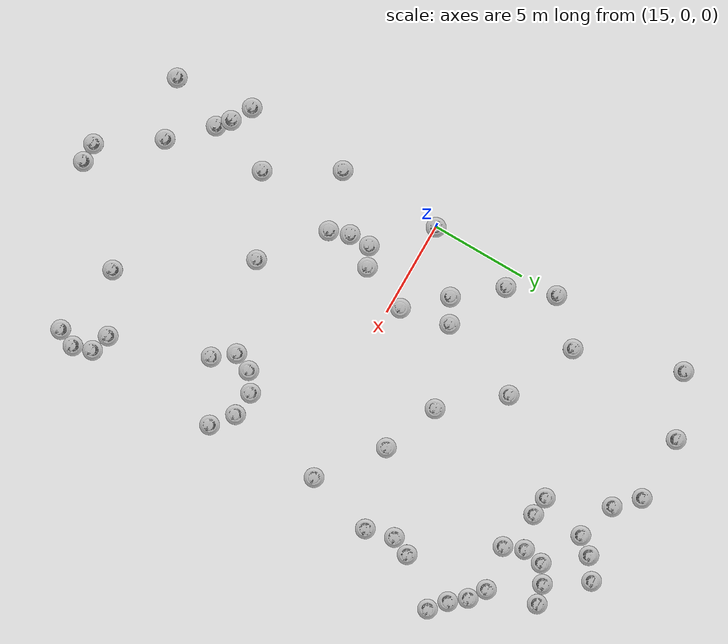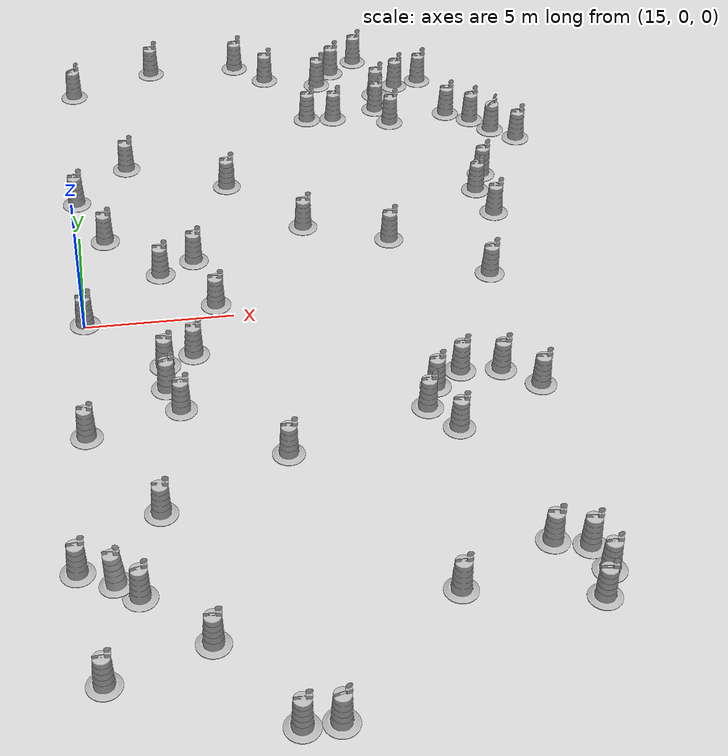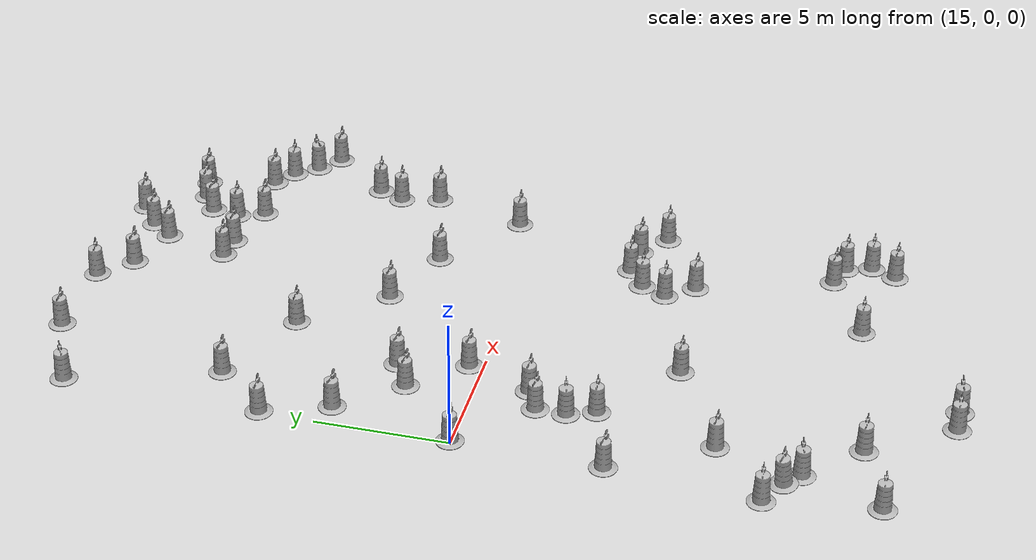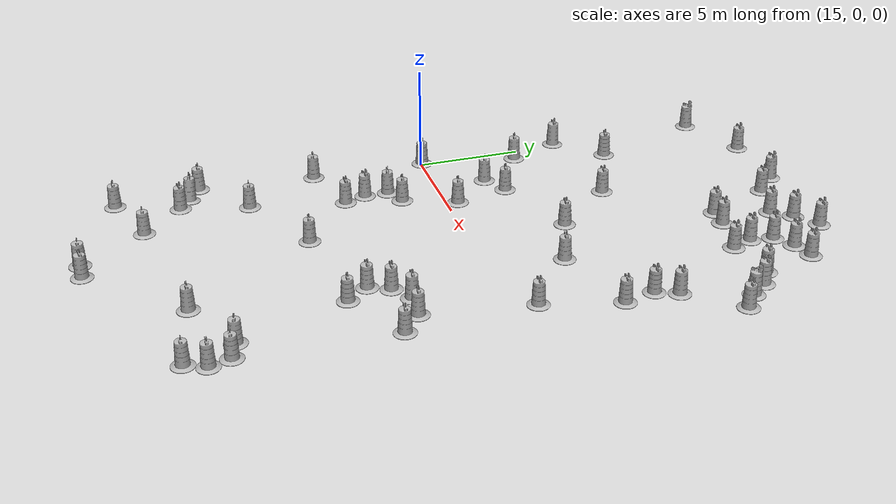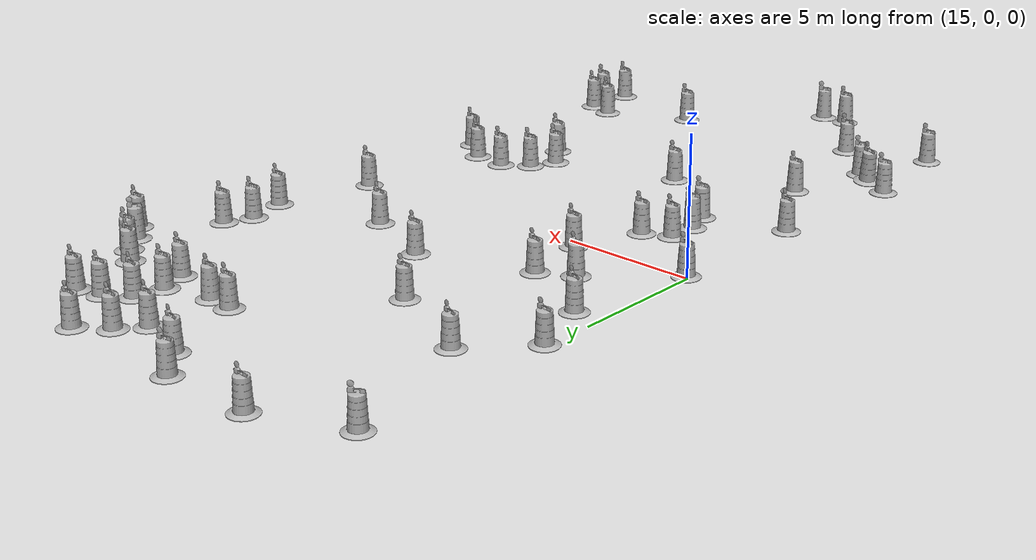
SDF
<sdf version="1.4">
 <world name="IGVC_Advanced_Course">
  <model name="Construction Barrel_9">
   <link name="link">
    <inertial>
     <pose>0 0 0.4 0 -0 0</pose>
     <mass>500</mass>
     <inertia><ixx>51.2096</ixx><iyy>51.2096</iyy><izz>25</izz><ixy>0</ixy><ixz>0</ixz><iyz>0</iyz></inertia>
    </inertial>
    <collision name="collision">
     <geometry><mesh><uri>model://construction_barrel/meshes/construction_barrel.dae</uri></mesh></geometry>
    </collision>
    <visual name="visual">
     <geometry><mesh><uri>model://construction_barrel/meshes/construction_barrel.dae</uri></mesh></geometry>
    </visual>
    <velocity_decay><linear>0</linear><angular>0</angular></velocity_decay>
   </link>
   <pose>14.444 -10.989 0.080999 -1e-06 -3e-06 0.066073</pose>
   <static>0</static>
  </model>
  <model name="Construction Barrel_10">
   <link name="link">
    <inertial>
     <pose>0 0 0.4 0 -0 0</pose>
     <mass>500</mass>
     <inertia><ixx>51.2096</ixx><iyy>51.2096</iyy><izz>25</izz><ixy>0</ixy><ixz>0</ixz><iyz>0</iyz></inertia>
    </inertial>
    <collision name="collision">
     <geometry><mesh><uri>model://construction_barrel/meshes/construction_barrel.dae</uri></mesh></geometry>
    </collision>
    <visual name="visual">
     <geometry><mesh><uri>model://construction_barrel/meshes/construction_barrel.dae</uri></mesh></geometry>
    </visual>
    <velocity_decay><linear>0</linear><angular>0</angular></velocity_decay>
   </link>
   <pose>15.5108 -11.5852 0.132666 -0.044248 -0.091691 -0.232801</pose>
   <static>0</static>
  </model>
  <model name="Construction Barrel_11">
   <link name="link">
    <inertial>
     <pose>0 0 0.4 0 -0 0</pose>
     <mass>500</mass>
     <inertia><ixx>51.2096</ixx><iyy>51.2096</iyy><izz>25</izz><ixy>0</ixy><ixz>0</ixz><iyz>0</iyz></inertia>
    </inertial>
    <collision name="collision">
     <geometry><mesh><uri>model://construction_barrel/meshes/construction_barrel.dae</uri></mesh></geometry>
    </collision>
    <visual name="visual">
     <geometry><mesh><uri>model://construction_barrel/meshes/construction_barrel.dae</uri></mesh></geometry>
    </visual>
    <velocity_decay><linear>0</linear><angular>0</angular></velocity_decay>
   </link>
   <pose>16.1396 -12.1013 0.081 0 -0 0.23185</pose>
   <static>0</static>
  </model>
  <model name="Construction Barrel_12">
   <link name="link">
    <inertial>
     <pose>0 0 0.4 0 -0 0</pose>
     <mass>500</mass>
     <inertia><ixx>51.2096</ixx><iyy>51.2096</iyy><izz>25</izz><ixy>0</ixy><ixz>0</ixz><iyz>0</iyz></inertia>
    </inertial>
    <collision name="collision">
     <geometry><mesh><uri>model://construction_barrel/meshes/construction_barrel.dae</uri></mesh></geometry>
    </collision>
    <visual name="visual">
     <geometry><mesh><uri>model://construction_barrel/meshes/construction_barrel.dae</uri></mesh></geometry>
    </visual>
    <velocity_decay><linear>0</linear><angular>0</angular></velocity_decay>
   </link>
   <pose>25.0067 -13.0004 0.080999 3e-06 -0 0.001655</pose>
   <static>0</static>
  </model>
  <model name="Construction Barrel_13">
   <link name="link">
    <inertial>
     <pose>0 0 0.4 0 -0 0</pose>
     <mass>500</mass>
     <inertia><ixx>51.2096</ixx><iyy>51.2096</iyy><izz>25</izz><ixy>0</ixy><ixz>0</ixz><iyz>0</iyz></inertia>
    </inertial>
    <collision name="collision">
     <geometry><mesh><uri>model://construction_barrel/meshes/construction_barrel.dae</uri></mesh></geometry>
    </collision>
    <visual name="visual">
     <geometry><mesh><uri>model://construction_barrel/meshes/construction_barrel.dae</uri></mesh></geometry>
    </visual>
    <velocity_decay><linear>0</linear><angular>0</angular></velocity_decay>
   </link>
   <pose>28.909 -13.7683 0.080999 -1e-06 -3e-06 -0.096455</pose>
   <static>0</static>
  </model>
  <model name="Construction Barrel_14">
   <link name="link">
    <inertial>
     <pose>0 0 0.4 0 -0 0</pose>
     <mass>500</mass>
     <inertia><ixx>51.2096</ixx><iyy>51.2096</iyy><izz>25</izz><ixy>0</ixy><ixz>0</ixz><iyz>0</iyz></inertia>
    </inertial>
    <collision name="collision">
     <geometry><mesh><uri>model://construction_barrel/meshes/construction_barrel.dae</uri></mesh></geometry>
    </collision>
    <visual name="visual">
     <geometry><mesh><uri>model://construction_barrel/meshes/construction_barrel.dae</uri></mesh></geometry>
    </visual>
    <velocity_decay><linear>0</linear><angular>0</angular></velocity_decay>
   </link>
   <pose>29.3138 -12.8312 0.080999 -1e-06 -3e-06 0.021451</pose>
   <static>0</static>
  </model>
  <model name="Construction Barrel_15">
   <link name="link">
    <inertial>
     <pose>0 0 0.4 0 -0 0</pose>
     <mass>500</mass>
     <inertia><ixx>51.2096</ixx><iyy>51.2096</iyy><izz>25</izz><ixy>0</ixy><ixz>0</ixz><iyz>0</iyz></inertia>
    </inertial>
    <collision name="collision">
     <geometry><mesh><uri>model://construction_barrel/meshes/construction_barrel.dae</uri></mesh></geometry>
    </collision>
    <visual name="visual">
     <geometry><mesh><uri>model://construction_barrel/meshes/construction_barrel.dae</uri></mesh></geometry>
    </visual>
    <velocity_decay><linear>0</linear><angular>0</angular></velocity_decay>
   </link>
   <pose>29.0176 -11.8596 0.080999 -1e-06 -2e-06 -0.086565</pose>
   <static>0</static>
  </model>
  <model name="Construction Barrel_16">
   <link name="link">
    <inertial>
     <pose>0 0 0.4 0 -0 0</pose>
     <mass>500</mass>
     <inertia><ixx>51.2096</ixx><iyy>51.2096</iyy><izz>25</izz><ixy>0</ixy><ixz>0</ixz><iyz>0</iyz></inertia>
    </inertial>
    <collision name="collision">
     <geometry><mesh><uri>model://construction_barrel/meshes/construction_barrel.dae</uri></mesh></geometry>
    </collision>
    <visual name="visual">
     <geometry><mesh><uri>model://construction_barrel/meshes/construction_barrel.dae</uri></mesh></geometry>
    </visual>
    <velocity_decay><linear>0</linear><angular>0</angular></velocity_decay>
   </link>
   <pose>28.002 -11.5393 0.080999 -1e-06 -3e-06 -0.166182</pose>
   <static>0</static>
  </model>
  <model name="Construction Barrel_17">
   <link name="link">
    <inertial>
     <pose>0 0 0.4 0 -0 0</pose>
     <mass>500</mass>
     <inertia><ixx>51.2096</ixx><iyy>51.2096</iyy><izz>25</izz><ixy>0</ixy><ixz>0</ixz><iyz>0</iyz></inertia>
    </inertial>
    <collision name="collision">
     <geometry><mesh><uri>model://construction_barrel/meshes/construction_barrel.dae</uri></mesh></geometry>
    </collision>
    <visual name="visual">
     <geometry><mesh><uri>model://construction_barrel/meshes/construction_barrel.dae</uri></mesh></geometry>
    </visual>
    <velocity_decay><linear>0</linear><angular>0</angular></velocity_decay>
   </link>
   <pose>26.3344 -6.52818 0.080999 -1e-06 -2e-06 -0.088087</pose>
   <static>0</static>
  </model>
  <model name="Construction Barrel_18">
   <link name="link">
    <inertial>
     <pose>0 0 0.4 0 -0 0</pose>
     <mass>500</mass>
     <inertia><ixx>51.2096</ixx><iyy>51.2096</iyy><izz>25</izz><ixy>0</ixy><ixz>0</ixz><iyz>0</iyz></inertia>
    </inertial>
    <collision name="collision">
     <geometry><mesh><uri>model://construction_barrel/meshes/construction_barrel.dae</uri></mesh></geometry>
    </collision>
    <visual name="visual">
     <geometry><mesh><uri>model://construction_barrel/meshes/construction_barrel.dae</uri></mesh></geometry>
    </visual>
    <velocity_decay><linear>0</linear><angular>0</angular></velocity_decay>
   </link>
   <pose>20.9537 -6.98032 0.080999 -1e-06 -3e-06 -0.078884</pose>
   <static>0</static>
  </model>
  <model name="Construction Barrel_19">
   <link name="link">
    <inertial>
     <pose>0 0 0.4 0 -0 0</pose>
     <mass>500</mass>
     <inertia><ixx>51.2096</ixx><iyy>51.2096</iyy><izz>25</izz><ixy>0</ixy><ixz>0</ixz><iyz>0</iyz></inertia>
    </inertial>
    <collision name="collision">
     <geometry><mesh><uri>model://construction_barrel/meshes/construction_barrel.dae</uri></mesh></geometry>
    </collision>
    <visual name="visual">
     <geometry><mesh><uri>model://construction_barrel/meshes/construction_barrel.dae</uri></mesh></geometry>
    </visual>
    <velocity_decay><linear>0</linear><angular>0</angular></velocity_decay>
   </link>
   <pose>16.9409 -8.96894 0.080999 -1e-06 -4e-06 -0.129432</pose>
   <static>0</static>
  </model>
  <model name="Construction Barrel_20">
   <link name="link">
    <inertial>
     <pose>0 0 0.4 0 -0 0</pose>
     <mass>500</mass>
     <inertia><ixx>51.2096</ixx><iyy>51.2096</iyy><izz>25</izz><ixy>0</ixy><ixz>0</ixz><iyz>0</iyz></inertia>
    </inertial>
    <collision name="collision">
     <geometry><mesh><uri>model://construction_barrel/meshes/construction_barrel.dae</uri></mesh></geometry>
    </collision>
    <visual name="visual">
     <geometry><mesh><uri>model://construction_barrel/meshes/construction_barrel.dae</uri></mesh></geometry>
    </visual>
    <velocity_decay><linear>0</linear><angular>0</angular></velocity_decay>
   </link>
   <pose>14.8941 -5.45377 0.080999 -1e-06 -2e-06 -0.261305</pose>
   <static>0</static>
  </model>
  <model name="Construction Barrel_21">
   <link name="link">
    <inertial>
     <pose>0 0 0.4 0 -0 0</pose>
     <mass>500</mass>
     <inertia><ixx>51.2096</ixx><iyy>51.2096</iyy><izz>25</izz><ixy>0</ixy><ixz>0</ixz><iyz>0</iyz></inertia>
    </inertial>
    <collision name="collision">
     <geometry><mesh><uri>model://construction_barrel/meshes/construction_barrel.dae</uri></mesh></geometry>
    </collision>
    <visual name="visual">
     <geometry><mesh><uri>model://construction_barrel/meshes/construction_barrel.dae</uri></mesh></geometry>
    </visual>
    <velocity_decay><linear>0</linear><angular>0</angular></velocity_decay>
   </link>
   <pose>17.5037 -3.53423 0.080999 -2e-06 -3e-06 0.256139</pose>
   <static>0</static>
  </model>
  <model name="Construction Barrel_22">
   <link name="link">
    <inertial>
     <pose>0 0 0.4 0 -0 0</pose>
     <mass>500</mass>
     <inertia><ixx>51.2096</ixx><iyy>51.2096</iyy><izz>25</izz><ixy>0</ixy><ixz>0</ixz><iyz>0</iyz></inertia>
    </inertial>
    <collision name="collision">
     <geometry><mesh><uri>model://construction_barrel/meshes/construction_barrel.dae</uri></mesh></geometry>
    </collision>
    <visual name="visual">
     <geometry><mesh><uri>model://construction_barrel/meshes/construction_barrel.dae</uri></mesh></geometry>
    </visual>
    <velocity_decay><linear>0</linear><angular>0</angular></velocity_decay>
   </link>
   <pose>25.9833 -4.54218 0.080999 3e-06 -1.32349e-23 0.019575</pose>
   <static>0</static>
  </model>
  <model name="Construction Barrel_23">
   <link name="link">
    <inertial>
     <pose>0 0 0.4 0 -0 0</pose>
     <mass>500</mass>
     <inertia><ixx>51.2096</ixx><iyy>51.2096</iyy><izz>25</izz><ixy>0</ixy><ixz>0</ixz><iyz>0</iyz></inertia>
    </inertial>
    <collision name="collision">
     <geometry><mesh><uri>model://construction_barrel/meshes/construction_barrel.dae</uri></mesh></geometry>
    </collision>
    <visual name="visual">
     <geometry><mesh><uri>model://construction_barrel/meshes/construction_barrel.dae</uri></mesh></geometry>
    </visual>
    <velocity_decay><linear>0</linear><angular>0</angular></velocity_decay>
   </link>
   <pose>25.5392 -5.49243 0.080999 -1e-06 -2e-06 0.03129</pose>
   <static>0</static>
  </model>
  <model name="Construction Barrel_24">
   <link name="link">
    <inertial>
     <pose>0 0 0.4 0 -0 0</pose>
     <mass>500</mass>
     <inertia><ixx>51.2096</ixx><iyy>51.2096</iyy><izz>25</izz><ixy>0</ixy><ixz>0</ixz><iyz>0</iyz></inertia>
    </inertial>
    <collision name="collision">
     <geometry><mesh><uri>model://construction_barrel/meshes/construction_barrel.dae</uri></mesh></geometry>
    </collision>
    <visual name="visual">
     <geometry><mesh><uri>model://construction_barrel/meshes/construction_barrel.dae</uri></mesh></geometry>
    </visual>
    <velocity_decay><linear>0</linear><angular>0</angular></velocity_decay>
   </link>
   <pose>26.9167 -3.89784 0.080999 4e-06 -0 7.9e-05</pose>
   <static>0</static>
  </model>
  <model name="Construction Barrel_25">
   <link name="link">
    <inertial>
     <pose>0 0 0.4 0 -0 0</pose>
     <mass>500</mass>
     <inertia><ixx>51.2096</ixx><iyy>51.2096</iyy><izz>25</izz><ixy>0</ixy><ixz>0</ixz><iyz>0</iyz></inertia>
    </inertial>
    <collision name="collision">
     <geometry><mesh><uri>model://construction_barrel/meshes/construction_barrel.dae</uri></mesh></geometry>
    </collision>
    <visual name="visual">
     <geometry><mesh><uri>model://construction_barrel/meshes/construction_barrel.dae</uri></mesh></geometry>
    </visual>
    <velocity_decay><linear>0</linear><angular>0</angular></velocity_decay>
   </link>
   <pose>28.2333 -4.01245 0.080999 2e-06 -2.64698e-23 -0.085916</pose>
   <static>0</static>
  </model>
  <model name="Construction Barrel_26">
   <link name="link">
    <inertial>
     <pose>0 0 0.4 0 -0 0</pose>
     <mass>500</mass>
     <inertia><ixx>51.2096</ixx><iyy>51.2096</iyy><izz>25</izz><ixy>0</ixy><ixz>0</ixz><iyz>0</iyz></inertia>
    </inertial>
    <collision name="collision">
     <geometry><mesh><uri>model://construction_barrel/meshes/construction_barrel.dae</uri></mesh></geometry>
    </collision>
    <visual name="visual">
     <geometry><mesh><uri>model://construction_barrel/meshes/construction_barrel.dae</uri></mesh></geometry>
    </visual>
    <velocity_decay><linear>0</linear><angular>0</angular></velocity_decay>
   </link>
   <pose>29.3369 -4.88549 0.080999 2e-06 1.32349e-23 -0.048616</pose>
   <static>0</static>
  </model>
  <model name="Construction Barrel_27">
   <link name="link">
    <inertial>
     <pose>0 0 0.4 0 -0 0</pose>
     <mass>500</mass>
     <inertia><ixx>51.2096</ixx><iyy>51.2096</iyy><izz>25</izz><ixy>0</ixy><ixz>0</ixz><iyz>0</iyz></inertia>
    </inertial>
    <collision name="collision">
     <geometry><mesh><uri>model://construction_barrel/meshes/construction_barrel.dae</uri></mesh></geometry>
    </collision>
    <visual name="visual">
     <geometry><mesh><uri>model://construction_barrel/meshes/construction_barrel.dae</uri></mesh></geometry>
    </visual>
    <velocity_decay><linear>0</linear><angular>0</angular></velocity_decay>
   </link>
   <pose>17.5233 -2.41916 0.081 2e-06 5.29396e-23 -0.167893</pose>
   <static>0</static>
  </model>
  <model name="Construction Barrel_28">
   <link name="link">
    <inertial>
     <pose>0 0 0.4 0 -0 0</pose>
     <mass>500</mass>
     <inertia><ixx>51.2096</ixx><iyy>51.2096</iyy><izz>25</izz><ixy>0</ixy><ixz>0</ixz><iyz>0</iyz></inertia>
    </inertial>
    <collision name="collision">
     <geometry><mesh><uri>model://construction_barrel/meshes/construction_barrel.dae</uri></mesh></geometry>
    </collision>
    <visual name="visual">
     <geometry><mesh><uri>model://construction_barrel/meshes/construction_barrel.dae</uri></mesh></geometry>
    </visual>
    <velocity_decay><linear>0</linear><angular>0</angular></velocity_decay>
   </link>
   <pose>18.497 -1.96191 0.080999 -1e-06 -3e-06 -0.115255</pose>
   <static>0</static>
  </model>
  <model name="Construction Barrel_29">
   <link name="link">
    <inertial>
     <pose>0 0 0.4 0 -0 0</pose>
     <mass>500</mass>
     <inertia><ixx>51.2096</ixx><iyy>51.2096</iyy><izz>25</izz><ixy>0</ixy><ixz>0</ixz><iyz>0</iyz></inertia>
    </inertial>
    <collision name="collision">
     <geometry><mesh><uri>model://construction_barrel/meshes/construction_barrel.dae</uri></mesh></geometry>
    </collision>
    <visual name="visual">
     <geometry><mesh><uri>model://construction_barrel/meshes/construction_barrel.dae</uri></mesh></geometry>
    </visual>
    <velocity_decay><linear>0</linear><angular>0</angular></velocity_decay>
   </link>
   <pose>17.8771 -4.56521 0.080999 3e-06 -0 0.056296</pose>
   <static>0</static>
  </model>
  <model name="Construction Barrel_35">
   <link name="link">
    <inertial>
     <pose>0 0 0.4 0 -0 0</pose>
     <mass>500</mass>
     <inertia><ixx>51.2096</ixx><iyy>51.2096</iyy><izz>25</izz><ixy>0</ixy><ixz>0</ixz><iyz>0</iyz></inertia>
    </inertial>
    <collision name="collision">
     <geometry><mesh><uri>model://construction_barrel/meshes/construction_barrel.dae</uri></mesh></geometry>
    </collision>
    <visual name="visual">
     <geometry><mesh><uri>model://construction_barrel/meshes/construction_barrel.dae</uri></mesh></geometry>
    </visual>
    <velocity_decay><linear>0</linear><angular>0</angular></velocity_decay>
   </link>
   <pose>14.9779 7.00392 0.093536 -0.019669 -0.015093 -0.02519</pose>
   <static>0</static>
  </model>
  <model name="Construction Barrel_36">
   <link name="link">
    <inertial>
     <pose>0 0 0.4 0 -0 0</pose>
     <mass>500</mass>
     <inertia><ixx>51.2096</ixx><iyy>51.2096</iyy><izz>25</izz><ixy>0</ixy><ixz>0</ixz><iyz>0</iyz></inertia>
    </inertial>
    <collision name="collision">
     <geometry><mesh><uri>model://construction_barrel/meshes/construction_barrel.dae</uri></mesh></geometry>
    </collision>
    <visual name="visual">
     <geometry><mesh><uri>model://construction_barrel/meshes/construction_barrel.dae</uri></mesh></geometry>
    </visual>
    <velocity_decay><linear>0</linear><angular>0</angular></velocity_decay>
   </link>
   <pose>16.8973 9.04896 0.080999 -1e-06 -3e-06 -0.186552</pose>
   <static>0</static>
  </model>
  <model name="Construction Barrel_42">
   <link name="link">
    <inertial>
     <pose>0 0 0.4 0 -0 0</pose>
     <mass>500</mass>
     <inertia><ixx>51.2096</ixx><iyy>51.2096</iyy><izz>25</izz><ixy>0</ixy><ixz>0</ixz><iyz>0</iyz></inertia>
    </inertial>
    <collision name="collision">
     <geometry><mesh><uri>model://construction_barrel/meshes/construction_barrel.dae</uri></mesh></geometry>
    </collision>
    <visual name="visual">
     <geometry><mesh><uri>model://construction_barrel/meshes/construction_barrel.dae</uri></mesh></geometry>
    </visual>
    <velocity_decay><linear>0</linear><angular>0</angular></velocity_decay>
   </link>
   <pose>15.0109 -15.0091 0.080999 -1e-06 -2e-06 0.045995</pose>
   <static>0</static>
  </model>
  <model name="Construction Barrel_43">
   <link name="link">
    <inertial>
     <pose>0 0 0.4 0 -0 0</pose>
     <mass>500</mass>
     <inertia><ixx>51.2096</ixx><iyy>51.2096</iyy><izz>25</izz><ixy>0</ixy><ixz>0</ixz><iyz>0</iyz></inertia>
    </inertial>
    <collision name="collision">
     <geometry><mesh><uri>model://construction_barrel/meshes/construction_barrel.dae</uri></mesh></geometry>
    </collision>
    <visual name="visual">
     <geometry><mesh><uri>model://construction_barrel/meshes/construction_barrel.dae</uri></mesh></geometry>
    </visual>
    <velocity_decay><linear>0</linear><angular>0</angular></velocity_decay>
   </link>
   <pose>17.9929 -13.9962 0.081 0 -1e-06 -0.045003</pose>
   <static>0</static>
  </model>
  <model name="Construction Barrel_44">
   <link name="link">
    <inertial>
     <pose>0 0 0.4 0 -0 0</pose>
     <mass>500</mass>
     <inertia><ixx>51.2096</ixx><iyy>51.2096</iyy><izz>25</izz><ixy>0</ixy><ixz>0</ixz><iyz>0</iyz></inertia>
    </inertial>
    <collision name="collision">
     <geometry><mesh><uri>model://construction_barrel/meshes/construction_barrel.dae</uri></mesh></geometry>
    </collision>
    <visual name="visual">
     <geometry><mesh><uri>model://construction_barrel/meshes/construction_barrel.dae</uri></mesh></geometry>
    </visual>
    <velocity_decay><linear>0</linear><angular>0</angular></velocity_decay>
   </link>
   <pose>21.016 -16.9985 0.080999 4e-06 -1e-06 0.228589</pose>
   <static>0</static>
  </model>
  <model name="Construction Barrel_45">
   <link name="link">
    <inertial>
     <pose>0 0 0.4 0 -0 0</pose>
     <mass>500</mass>
     <inertia><ixx>51.2096</ixx><iyy>51.2096</iyy><izz>25</izz><ixy>0</ixy><ixz>0</ixz><iyz>0</iyz></inertia>
    </inertial>
    <collision name="collision">
     <geometry><mesh><uri>model://construction_barrel/meshes/construction_barrel.dae</uri></mesh></geometry>
    </collision>
    <visual name="visual">
     <geometry><mesh><uri>model://construction_barrel/meshes/construction_barrel.dae</uri></mesh></geometry>
    </visual>
    <velocity_decay><linear>0</linear><angular>0</angular></velocity_decay>
   </link>
   <pose>19.9917 -17.0007 0.080999 3e-06 -0 -0.009941</pose>
   <static>0</static>
  </model>
  <model name="Construction Barrel_50">
   <link name="link">
    <inertial>
     <pose>0 0 0.4 0 -0 0</pose>
     <mass>500</mass>
     <inertia><ixx>51.2096</ixx><iyy>51.2096</iyy><izz>25</izz><ixy>0</ixy><ixz>0</ixz><iyz>0</iyz></inertia>
    </inertial>
    <collision name="collision">
     <geometry><mesh><uri>model://construction_barrel/meshes/construction_barrel.dae</uri></mesh></geometry>
    </collision>
    <visual name="visual">
     <geometry><mesh><uri>model://construction_barrel/meshes/construction_barrel.dae</uri></mesh></geometry>
    </visual>
    <velocity_decay><linear>0</linear><angular>0</angular></velocity_decay>
   </link>
   <pose>19.4517 0.50389 0.080999 -1e-06 -3e-06 -0.169784</pose>
   <static>0</static>
  </model>
  <model name="Construction Barrel_51">
   <link name="link">
    <inertial>
     <pose>0 0 0.4 0 -0 0</pose>
     <mass>500</mass>
     <inertia><ixx>51.2096</ixx><iyy>51.2096</iyy><izz>25</izz><ixy>0</ixy><ixz>0</ixz><iyz>0</iyz></inertia>
    </inertial>
    <collision name="collision">
     <geometry><mesh><uri>model://construction_barrel/meshes/construction_barrel.dae</uri></mesh></geometry>
    </collision>
    <visual name="visual">
     <geometry><mesh><uri>model://construction_barrel/meshes/construction_barrel.dae</uri></mesh></geometry>
    </visual>
    <velocity_decay><linear>0</linear><angular>0</angular></velocity_decay>
   </link>
   <pose>17.7122 2.40379 0.080999 -1e-06 -3e-06 -0.189937</pose>
   <static>0</static>
  </model>
  <model name="Construction Barrel_52">
   <link name="link">
    <inertial>
     <pose>0 0 0.4 0 -0 0</pose>
     <mass>500</mass>
     <inertia><ixx>51.2096</ixx><iyy>51.2096</iyy><izz>25</izz><ixy>0</ixy><ixz>0</ixz><iyz>0</iyz></inertia>
    </inertial>
    <collision name="collision">
     <geometry><mesh><uri>model://construction_barrel/meshes/construction_barrel.dae</uri></mesh></geometry>
    </collision>
    <visual name="visual">
     <geometry><mesh><uri>model://construction_barrel/meshes/construction_barrel.dae</uri></mesh></geometry>
    </visual>
    <velocity_decay><linear>0</linear><angular>0</angular></velocity_decay>
   </link>
   <pose>15.0317 0.02493 0.080999 4e-06 1.32349e-23 -0.022055</pose>
   <static>0</static>
  </model>
  <model name="Construction Barrel_53">
   <link name="link">
    <inertial>
     <pose>0 0 0.4 0 -0 0</pose>
     <mass>500</mass>
     <inertia><ixx>51.2096</ixx><iyy>51.2096</iyy><izz>25</izz><ixy>0</ixy><ixz>0</ixz><iyz>0</iyz></inertia>
    </inertial>
    <collision name="collision">
     <geometry><mesh><uri>model://construction_barrel/meshes/construction_barrel.dae</uri></mesh></geometry>
    </collision>
    <visual name="visual">
     <geometry><mesh><uri>model://construction_barrel/meshes/construction_barrel.dae</uri></mesh></geometry>
    </visual>
    <velocity_decay><linear>0</linear><angular>0</angular></velocity_decay>
   </link>
   <pose>18.9193 3.05243 0.080999 4e-06 -0 -0.183902</pose>
   <static>0</static>
  </model>
  <model name="Construction Barrel_54">
   <link name="link">
    <inertial>
     <pose>0 0 0.4 0 -0 0</pose>
     <mass>500</mass>
     <inertia><ixx>51.2096</ixx><iyy>51.2096</iyy><izz>25</izz><ixy>0</ixy><ixz>0</ixz><iyz>0</iyz></inertia>
    </inertial>
    <collision name="collision">
     <geometry><mesh><uri>model://construction_barrel/meshes/construction_barrel.dae</uri></mesh></geometry>
    </collision>
    <visual name="visual">
     <geometry><mesh><uri>model://construction_barrel/meshes/construction_barrel.dae</uri></mesh></geometry>
    </visual>
    <velocity_decay><linear>0</linear><angular>0</angular></velocity_decay>
   </link>
   <pose>15.898 4.58426 0.080999 2e-06 5.29396e-23 -0.232036</pose>
   <static>0</static>
  </model>
  <model name="Construction Barrel_55">
   <link name="link">
    <inertial>
     <pose>0 0 0.4 0 -0 0</pose>
     <mass>500</mass>
     <inertia><ixx>51.2096</ixx><iyy>51.2096</iyy><izz>25</izz><ixy>0</ixy><ixz>0</ixz><iyz>0</iyz></inertia>
    </inertial>
    <collision name="collision">
     <geometry><mesh><uri>model://construction_barrel/meshes/construction_barrel.dae</uri></mesh></geometry>
    </collision>
    <visual name="visual">
     <geometry><mesh><uri>model://construction_barrel/meshes/construction_barrel.dae</uri></mesh></geometry>
    </visual>
    <velocity_decay><linear>0</linear><angular>0</angular></velocity_decay>
   </link>
   <pose>20.5205 7.42129 0.080999 -1e-06 -2e-06 -0.0062</pose>
   <static>0</static>
  </model>
  <model name="Construction Barrel_56">
   <link name="link">
    <inertial>
     <pose>0 0 0.4 0 -0 0</pose>
     <mass>500</mass>
     <inertia><ixx>51.2096</ixx><iyy>51.2096</iyy><izz>25</izz><ixy>0</ixy><ixz>0</ixz><iyz>0</iyz></inertia>
    </inertial>
    <collision name="collision">
     <geometry><mesh><uri>model://construction_barrel/meshes/construction_barrel.dae</uri></mesh></geometry>
    </collision>
    <visual name="visual">
     <geometry><mesh><uri>model://construction_barrel/meshes/construction_barrel.dae</uri></mesh></geometry>
    </visual>
    <velocity_decay><linear>0</linear><angular>0</angular></velocity_decay>
   </link>
   <pose>29.6005 5.99393 0.080999 -1e-06 -2e-06 0.069164</pose>
   <static>0</static>
  </model>
  <model name="Construction Barrel_57">
   <link name="link">
    <inertial>
     <pose>0 0 0.4 0 -0 0</pose>
     <mass>500</mass>
     <inertia><ixx>51.2096</ixx><iyy>51.2096</iyy><izz>25</izz><ixy>0</ixy><ixz>0</ixz><iyz>0</iyz></inertia>
    </inertial>
    <collision name="collision">
     <geometry><mesh><uri>model://construction_barrel/meshes/construction_barrel.dae</uri></mesh></geometry>
    </collision>
    <visual name="visual">
     <geometry><mesh><uri>model://construction_barrel/meshes/construction_barrel.dae</uri></mesh></geometry>
    </visual>
    <velocity_decay><linear>0</linear><angular>0</angular></velocity_decay>
   </link>
   <pose>30.0296 6.98233 0.080999 -2e-06 -3e-06 0.052452</pose>
   <static>0</static>
  </model>
  <model name="Construction Barrel_58">
   <link name="link">
    <inertial>
     <pose>0 0 0.4 0 -0 0</pose>
     <mass>500</mass>
     <inertia><ixx>51.2096</ixx><iyy>51.2096</iyy><izz>25</izz><ixy>0</ixy><ixz>0</ixz><iyz>0</iyz></inertia>
    </inertial>
    <collision name="collision">
     <geometry><mesh><uri>model://construction_barrel/meshes/construction_barrel.dae</uri></mesh></geometry>
    </collision>
    <visual name="visual">
     <geometry><mesh><uri>model://construction_barrel/meshes/construction_barrel.dae</uri></mesh></geometry>
    </visual>
    <velocity_decay><linear>0</linear><angular>0</angular></velocity_decay>
   </link>
   <pose>25.8915 3.38982 0.080999 4e-06 -1.05879e-22 -0.129372</pose>
   <static>0</static>
  </model>
  <model name="Construction Barrel_59">
   <link name="link">
    <inertial>
     <pose>0 0 0.4 0 -0 0</pose>
     <mass>500</mass>
     <inertia><ixx>51.2096</ixx><iyy>51.2096</iyy><izz>25</izz><ixy>0</ixy><ixz>0</ixz><iyz>0</iyz></inertia>
    </inertial>
    <collision name="collision">
     <geometry><mesh><uri>model://construction_barrel/meshes/construction_barrel.dae</uri></mesh></geometry>
    </collision>
    <visual name="visual">
     <geometry><mesh><uri>model://construction_barrel/meshes/construction_barrel.dae</uri></mesh></geometry>
    </visual>
    <velocity_decay><linear>0</linear><angular>0</angular></velocity_decay>
   </link>
   <pose>29.9579 4.51155 0.080999 3e-06 -0 -0.040661</pose>
   <static>0</static>
  </model>
  <model name="Construction Barrel_60">
   <link name="link">
    <inertial>
     <pose>0 0 0.4 0 -0 0</pose>
     <mass>500</mass>
     <inertia><ixx>51.2096</ixx><iyy>51.2096</iyy><izz>25</izz><ixy>0</ixy><ixz>0</ixz><iyz>0</iyz></inertia>
    </inertial>
    <collision name="collision">
     <geometry><mesh><uri>model://construction_barrel/meshes/construction_barrel.dae</uri></mesh></geometry>
    </collision>
    <visual name="visual">
     <geometry><mesh><uri>model://construction_barrel/meshes/construction_barrel.dae</uri></mesh></geometry>
    </visual>
    <velocity_decay><linear>0</linear><angular>0</angular></velocity_decay>
   </link>
   <pose>29.0061 0.987679 0.080999 4e-06 1.32349e-23 0.020626</pose>
   <static>0</static>
  </model>
  <model name="Construction Barrel_61">
   <link name="link">
    <inertial>
     <pose>0 0 0.4 0 -0 0</pose>
     <mass>500</mass>
     <inertia><ixx>51.2096</ixx><iyy>51.2096</iyy><izz>25</izz><ixy>0</ixy><ixz>0</ixz><iyz>0</iyz></inertia>
    </inertial>
    <collision name="collision">
     <geometry><mesh><uri>model://construction_barrel/meshes/construction_barrel.dae</uri></mesh></geometry>
    </collision>
    <visual name="visual">
     <geometry><mesh><uri>model://construction_barrel/meshes/construction_barrel.dae</uri></mesh></geometry>
    </visual>
    <velocity_decay><linear>0</linear><angular>0</angular></velocity_decay>
   </link>
   <pose>22.9723 4.5363 0.080999 3e-06 1e-06 -0.088868</pose>
   <static>0</static>
  </model>
  <model name="Construction Barrel_72">
   <link name="link">
    <inertial>
     <pose>0 0 0.4 0 -0 0</pose>
     <mass>500</mass>
     <inertia><ixx>51.2096</ixx><iyy>51.2096</iyy><izz>25</izz><ixy>0</ixy><ixz>0</ixz><iyz>0</iyz></inertia>
    </inertial>
    <collision name="collision">
     <geometry><mesh><uri>model://construction_barrel/meshes/construction_barrel.dae</uri></mesh></geometry>
    </collision>
    <visual name="visual">
     <geometry><mesh><uri>model://construction_barrel/meshes/construction_barrel.dae</uri></mesh></geometry>
    </visual>
    <velocity_decay><linear>0</linear><angular>0</angular></velocity_decay>
   </link>
   <pose>29.5604 11.3114 0.080999 2e-06 -0 -0.063733</pose>
   <static>0</static>
  </model>
  <model name="Construction Barrel_73">
   <link name="link">
    <inertial>
     <pose>0 0 0.4 0 -0 0</pose>
     <mass>500</mass>
     <inertia><ixx>51.2096</ixx><iyy>51.2096</iyy><izz>25</izz><ixy>0</ixy><ixz>0</ixz><iyz>0</iyz></inertia>
    </inertial>
    <collision name="collision">
     <geometry><mesh><uri>model://construction_barrel/meshes/construction_barrel.dae</uri></mesh></geometry>
    </collision>
    <visual name="visual">
     <geometry><mesh><uri>model://construction_barrel/meshes/construction_barrel.dae</uri></mesh></geometry>
    </visual>
    <velocity_decay><linear>0</linear><angular>0</angular></velocity_decay>
   </link>
   <pose>31.8922 9.23621 0.080999 -1e-06 -3e-06 -0.018245</pose>
   <static>0</static>
  </model>
  <model name="Construction Barrel_74">
   <link name="link">
    <inertial>
     <pose>0 0 0.4 0 -0 0</pose>
     <mass>500</mass>
     <inertia><ixx>51.2096</ixx><iyy>51.2096</iyy><izz>25</izz><ixy>0</ixy><ixz>0</ixz><iyz>0</iyz></inertia>
    </inertial>
    <collision name="collision">
     <geometry><mesh><uri>model://construction_barrel/meshes/construction_barrel.dae</uri></mesh></geometry>
    </collision>
    <visual name="visual">
     <geometry><mesh><uri>model://construction_barrel/meshes/construction_barrel.dae</uri></mesh></geometry>
    </visual>
    <velocity_decay><linear>0</linear><angular>0</angular></velocity_decay>
   </link>
   <pose>31.0563 9.9314 0.080998 6e-06 -1e-06 0.709594</pose>
   <static>0</static>
  </model>
  <model name="Construction Barrel_75">
   <link name="link">
    <inertial>
     <pose>0 0 0.4 0 -0 0</pose>
     <mass>500</mass>
     <inertia><ixx>51.2096</ixx><iyy>51.2096</iyy><izz>25</izz><ixy>0</ixy><ixz>0</ixz><iyz>0</iyz></inertia>
    </inertial>
    <collision name="collision">
     <geometry><mesh><uri>model://construction_barrel/meshes/construction_barrel.dae</uri></mesh></geometry>
    </collision>
    <visual name="visual">
     <geometry><mesh><uri>model://construction_barrel/meshes/construction_barrel.dae</uri></mesh></geometry>
    </visual>
    <velocity_decay><linear>0</linear><angular>0</angular></velocity_decay>
   </link>
   <pose>27.2695 10.9575 0.080999 -1e-06 -4e-06 -0.005042</pose>
   <static>0</static>
  </model>
  <model name="Construction Barrel_76">
   <link name="link">
    <inertial>
     <pose>0 0 0.4 0 -0 0</pose>
     <mass>500</mass>
     <inertia><ixx>51.2096</ixx><iyy>51.2096</iyy><izz>25</izz><ixy>0</ixy><ixz>0</ixz><iyz>0</iyz></inertia>
    </inertial>
    <collision name="collision">
     <geometry><mesh><uri>model://construction_barrel/meshes/construction_barrel.dae</uri></mesh></geometry>
    </collision>
    <visual name="visual">
     <geometry><mesh><uri>model://construction_barrel/meshes/construction_barrel.dae</uri></mesh></geometry>
    </visual>
    <velocity_decay><linear>0</linear><angular>0</angular></velocity_decay>
   </link>
   <pose>30.4053 10.7401 0.080999 4e-06 -0 0.165007</pose>
   <static>0</static>
  </model>
  <model name="Construction Barrel_77">
   <link name="link">
    <inertial>
     <pose>0 0 0.4 0 -0 0</pose>
     <mass>500</mass>
     <inertia><ixx>51.2096</ixx><iyy>51.2096</iyy><izz>25</izz><ixy>0</ixy><ixz>0</ixz><iyz>0</iyz></inertia>
    </inertial>
    <collision name="collision">
     <geometry><mesh><uri>model://construction_barrel/meshes/construction_barrel.dae</uri></mesh></geometry>
    </collision>
    <visual name="visual">
     <geometry><mesh><uri>model://construction_barrel/meshes/construction_barrel.dae</uri></mesh></geometry>
    </visual>
    <velocity_decay><linear>0</linear><angular>0</angular></velocity_decay>
   </link>
   <pose>27.0381 13.0347 0.080999 3e-06 -0 -0.093502</pose>
   <static>0</static>
  </model>
  <model name="Construction Barrel_78">
   <link name="link">
    <inertial>
     <pose>0 0 0.4 0 -0 0</pose>
     <mass>500</mass>
     <inertia><ixx>51.2096</ixx><iyy>51.2096</iyy><izz>25</izz><ixy>0</ixy><ixz>0</ixz><iyz>0</iyz></inertia>
    </inertial>
    <collision name="collision">
     <geometry><mesh><uri>model://construction_barrel/meshes/construction_barrel.dae</uri></mesh></geometry>
    </collision>
    <visual name="visual">
     <geometry><mesh><uri>model://construction_barrel/meshes/construction_barrel.dae</uri></mesh></geometry>
    </visual>
    <velocity_decay><linear>0</linear><angular>0</angular></velocity_decay>
   </link>
   <pose>26.8592 11.9686 0.080999 3e-06 -0 0.086226</pose>
   <static>0</static>
  </model>
  <model name="Construction Barrel_79">
   <link name="link">
    <inertial>
     <pose>0 0 0.4 0 -0 0</pose>
     <mass>500</mass>
     <inertia><ixx>51.2096</ixx><iyy>51.2096</iyy><izz>25</izz><ixy>0</ixy><ixz>0</ixz><iyz>0</iyz></inertia>
    </inertial>
    <collision name="collision">
     <geometry><mesh><uri>model://construction_barrel/meshes/construction_barrel.dae</uri></mesh></geometry>
    </collision>
    <visual name="visual">
     <geometry><mesh><uri>model://construction_barrel/meshes/construction_barrel.dae</uri></mesh></geometry>
    </visual>
    <velocity_decay><linear>0</linear><angular>0</angular></velocity_decay>
   </link>
   <pose>27.9227 13.6201 0.081 2e-06 -2.64698e-23 0.07448</pose>
   <static>0</static>
  </model>
  <model name="Construction Barrel_80">
   <link name="link">
    <inertial>
     <pose>0 0 0.4 0 -0 0</pose>
     <mass>500</mass>
     <inertia><ixx>51.2096</ixx><iyy>51.2096</iyy><izz>25</izz><ixy>0</ixy><ixz>0</ixz><iyz>0</iyz></inertia>
    </inertial>
    <collision name="collision">
     <geometry><mesh><uri>model://construction_barrel/meshes/construction_barrel.dae</uri></mesh></geometry>
    </collision>
    <visual name="visual">
     <geometry><mesh><uri>model://construction_barrel/meshes/construction_barrel.dae</uri></mesh></geometry>
    </visual>
    <velocity_decay><linear>0</linear><angular>0</angular></velocity_decay>
   </link>
   <pose>28.9215 13.8901 0.080999 4e-06 8.27181e-25 -0.00121</pose>
   <static>0</static>
  </model>
  <model name="Construction Barrel_81">
   <link name="link">
    <inertial>
     <pose>0 0 0.4 0 -0 0</pose>
     <mass>500</mass>
     <inertia><ixx>51.2096</ixx><iyy>51.2096</iyy><izz>25</izz><ixy>0</ixy><ixz>0</ixz><iyz>0</iyz></inertia>
    </inertial>
    <collision name="collision">
     <geometry><mesh><uri>model://construction_barrel/meshes/construction_barrel.dae</uri></mesh></geometry>
    </collision>
    <visual name="visual">
     <geometry><mesh><uri>model://construction_barrel/meshes/construction_barrel.dae</uri></mesh></geometry>
    </visual>
    <velocity_decay><linear>0</linear><angular>0</angular></velocity_decay>
   </link>
   <pose>26.5644 15.6937 0.080999 3e-06 -1.32349e-23 0.031334</pose>
   <static>0</static>
  </model>
  <model name="Construction Barrel_82">
   <link name="link">
    <inertial>
     <pose>0 0 0.4 0 -0 0</pose>
     <mass>500</mass>
     <inertia><ixx>51.2096</ixx><iyy>51.2096</iyy><izz>25</izz><ixy>0</ixy><ixz>0</ixz><iyz>0</iyz></inertia>
    </inertial>
    <collision name="collision">
     <geometry><mesh><uri>model://construction_barrel/meshes/construction_barrel.dae</uri></mesh></geometry>
    </collision>
    <visual name="visual">
     <geometry><mesh><uri>model://construction_barrel/meshes/construction_barrel.dae</uri></mesh></geometry>
    </visual>
    <velocity_decay><linear>0</linear><angular>0</angular></velocity_decay>
   </link>
   <pose>25.514 14.9316 0.080999 -1e-06 -2e-06 0.005768</pose>
   <static>0</static>
  </model>
  <model name="Construction Barrel_83">
   <link name="link">
    <inertial>
     <pose>0 0 0.4 0 -0 0</pose>
     <mass>500</mass>
     <inertia><ixx>51.2096</ixx><iyy>51.2096</iyy><izz>25</izz><ixy>0</ixy><ixz>0</ixz><iyz>0</iyz></inertia>
    </inertial>
    <collision name="collision">
     <geometry><mesh><uri>model://construction_barrel/meshes/construction_barrel.dae</uri></mesh></geometry>
    </collision>
    <visual name="visual">
     <geometry><mesh><uri>model://construction_barrel/meshes/construction_barrel.dae</uri></mesh></geometry>
    </visual>
    <velocity_decay><linear>0</linear><angular>0</angular></velocity_decay>
   </link>
   <pose>24.8374 14.0785 0.080999 3e-06 -0 -0.087408</pose>
   <static>0</static>
  </model>
  <model name="Construction Barrel_84">
   <link name="link">
    <inertial>
     <pose>0 0 0.4 0 -0 0</pose>
     <mass>500</mass>
     <inertia><ixx>51.2096</ixx><iyy>51.2096</iyy><izz>25</izz><ixy>0</ixy><ixz>0</ixz><iyz>0</iyz></inertia>
    </inertial>
    <collision name="collision">
     <geometry><mesh><uri>model://construction_barrel/meshes/construction_barrel.dae</uri></mesh></geometry>
    </collision>
    <visual name="visual">
     <geometry><mesh><uri>model://construction_barrel/meshes/construction_barrel.dae</uri></mesh></geometry>
    </visual>
    <velocity_decay><linear>0</linear><angular>0</angular></velocity_decay>
   </link>
   <pose>25.1103 11.4921 0.080999 -1e-06 -2e-06 -0.020396</pose>
   <static>0</static>
  </model>
  <model name="Construction Barrel_85">
   <link name="link">
    <inertial>
     <pose>0 0 0.4 0 -0 0</pose>
     <mass>500</mass>
     <inertia><ixx>51.2096</ixx><iyy>51.2096</iyy><izz>25</izz><ixy>0</ixy><ixz>0</ixz><iyz>0</iyz></inertia>
    </inertial>
    <collision name="collision">
     <geometry><mesh><uri>model://construction_barrel/meshes/construction_barrel.dae</uri></mesh></geometry>
    </collision>
    <visual name="visual">
     <geometry><mesh><uri>model://construction_barrel/meshes/construction_barrel.dae</uri></mesh></geometry>
    </visual>
    <velocity_decay><linear>0</linear><angular>0</angular></velocity_decay>
   </link>
   <pose>22.7953 14.7212 0.081 -1e-06 -1e-06 -0.12135</pose>
   <static>0</static>
  </model>
  <model name="Construction Barrel_86">
   <link name="link">
    <inertial>
     <pose>0 0 0.4 0 -0 0</pose>
     <mass>500</mass>
     <inertia><ixx>51.2096</ixx><iyy>51.2096</iyy><izz>25</izz><ixy>0</ixy><ixz>0</ixz><iyz>0</iyz></inertia>
    </inertial>
    <collision name="collision">
     <geometry><mesh><uri>model://construction_barrel/meshes/construction_barrel.dae</uri></mesh></geometry>
    </collision>
    <visual name="visual">
     <geometry><mesh><uri>model://construction_barrel/meshes/construction_barrel.dae</uri></mesh></geometry>
    </visual>
    <velocity_decay><linear>0</linear><angular>0</angular></velocity_decay>
   </link>
   <pose>21.6773 15.8131 0.080999 -2e-06 -3e-06 0.191501</pose>
   <static>0</static>
  </model>
  <model name="Construction Barrel_87">
   <link name="link">
    <inertial>
     <pose>0 0 0.4 0 -0 0</pose>
     <mass>500</mass>
     <inertia><ixx>51.2096</ixx><iyy>51.2096</iyy><izz>25</izz><ixy>0</ixy><ixz>0</ixz><iyz>0</iyz></inertia>
    </inertial>
    <collision name="collision">
     <geometry><mesh><uri>model://construction_barrel/meshes/construction_barrel.dae</uri></mesh></geometry>
    </collision>
    <visual name="visual">
     <geometry><mesh><uri>model://construction_barrel/meshes/construction_barrel.dae</uri></mesh></geometry>
    </visual>
    <velocity_decay><linear>0</linear><angular>0</angular></velocity_decay>
   </link>
   <pose>24.0935 11.5775 0.080999 4e-06 -0 -0.03672</pose>
   <static>0</static>
  </model>
  <model name="Construction Barrel_88">
   <link name="link">
    <inertial>
     <pose>0 0 0.4 0 -0 0</pose>
     <mass>500</mass>
     <inertia><ixx>51.2096</ixx><iyy>51.2096</iyy><izz>25</izz><ixy>0</ixy><ixz>0</ixz><iyz>0</iyz></inertia>
    </inertial>
    <collision name="collision">
     <geometry><mesh><uri>model://construction_barrel/meshes/construction_barrel.dae</uri></mesh></geometry>
    </collision>
    <visual name="visual">
     <geometry><mesh><uri>model://construction_barrel/meshes/construction_barrel.dae</uri></mesh></geometry>
    </visual>
    <velocity_decay><linear>0</linear><angular>0</angular></velocity_decay>
   </link>
   <pose>18.2609 15.8241 0.080999 3e-06 -3.30872e-24 0.00819</pose>
   <static>0</static>
  </model>
  <model name="Construction Barrel_90">
   <link name="link">
    <inertial>
     <pose>0 0 0.4 0 -0 0</pose>
     <mass>500</mass>
     <inertia><ixx>51.2096</ixx><iyy>51.2096</iyy><izz>25</izz><ixy>0</ixy><ixz>0</ixz><iyz>0</iyz></inertia>
    </inertial>
    <collision name="collision">
     <geometry><mesh><uri>model://construction_barrel/meshes/construction_barrel.dae</uri></mesh></geometry>
    </collision>
    <visual name="visual">
     <geometry><mesh><uri>model://construction_barrel/meshes/construction_barrel.dae</uri></mesh></geometry>
    </visual>
    <velocity_decay><linear>0</linear><angular>0</angular></velocity_decay>
   </link>
   <pose>15.1063 14.4485 0.080999 3e-06 -2.11758e-22 0.543028</pose>
   <static>0</static>
  </model>
 </world>
</sdf>
